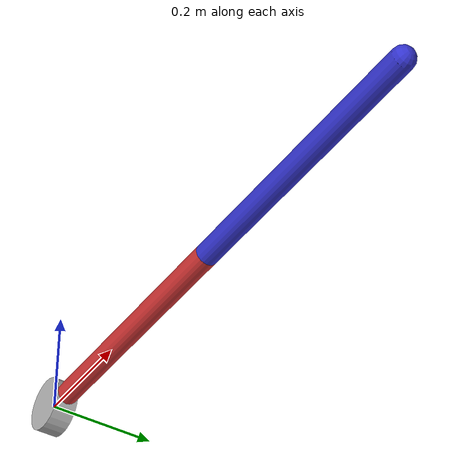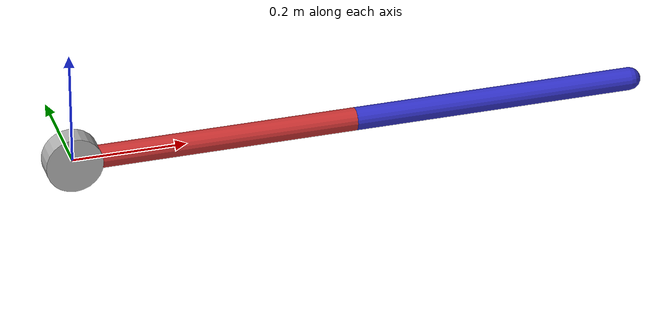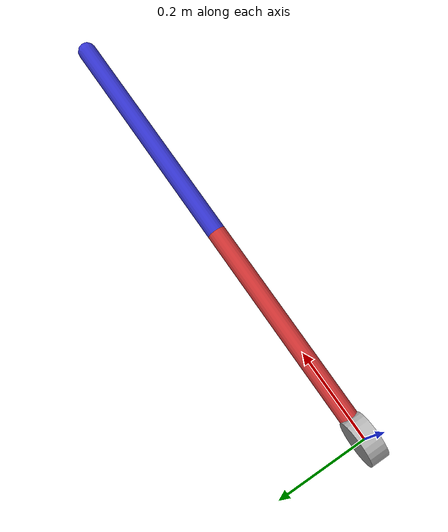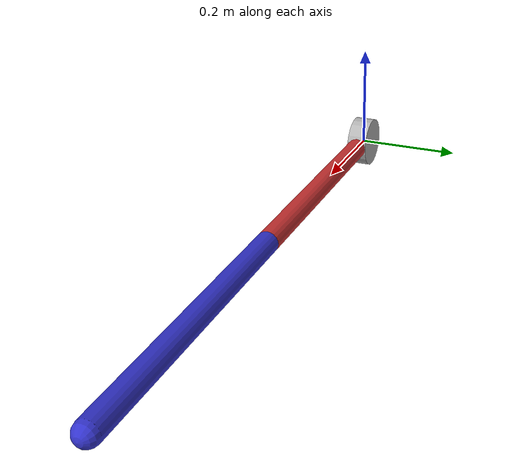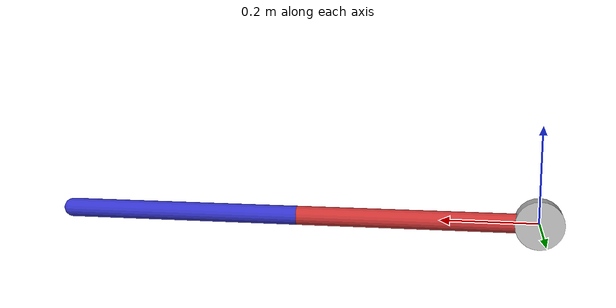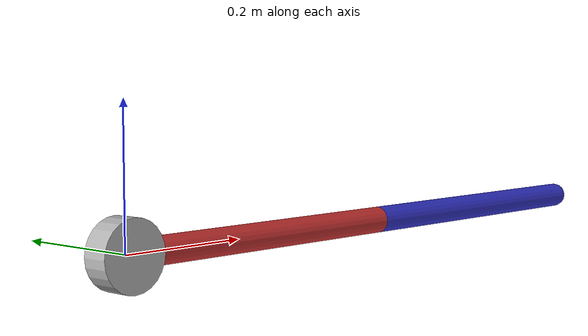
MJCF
<mujoco>
  <compiler angle="radian" inertiafromgeom="true"/>
  <option timestep="0.01" gravity="0 0 -9.81"/>

  <worldbody>
    <body name="base" pos="0 0 0">
      <geom type="cylinder" size="0.05 0.02" rgba="0.7 0.7 0.7 1" euler="1.57 0 0"/>

      <body name="link1">
        <joint name="joint1" type="hinge" axis="0 -1 0" damping="100"/>
        <geom type="capsule" fromto="0 0 0 0.5 0 0" size="0.02" rgba="0.8 0.2 0.2 1" mass="1.5"/>

        <body name="link2" pos="0.5 0 0">
          <joint name="joint2" type="hinge" axis="0 -1 0" damping="100"/>
          <geom type="capsule" fromto="0 0 0 0.5 0 0" size="0.02" rgba="0.2 0.2 0.8 1" mass="1.5"/>
        </body>
      </body>
    </body>
  </worldbody>

  <actuator>
    <position name="pos1" joint="joint1" kp="500"/>
    <position name="pos2" joint="joint2" kp="500"/>
  </actuator>
</mujoco>
